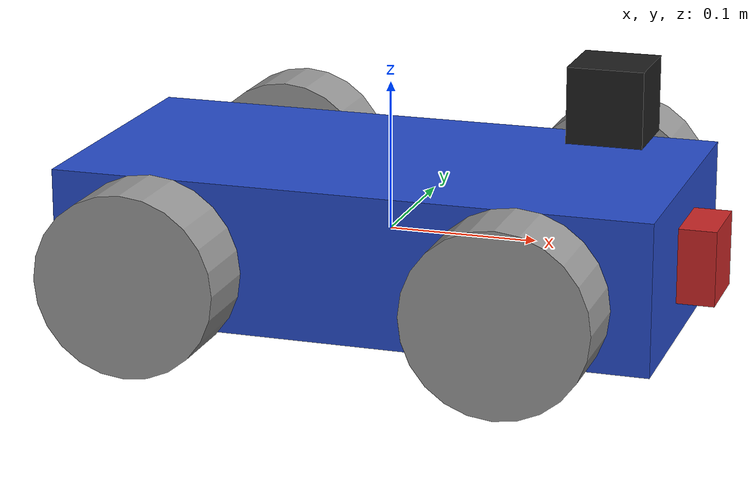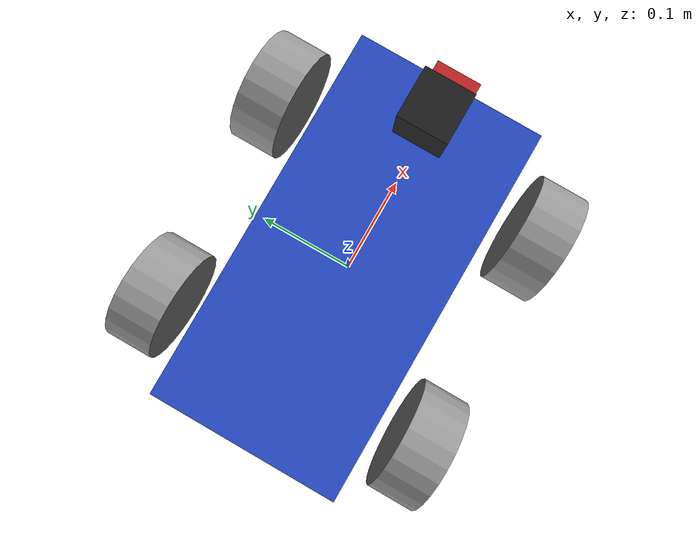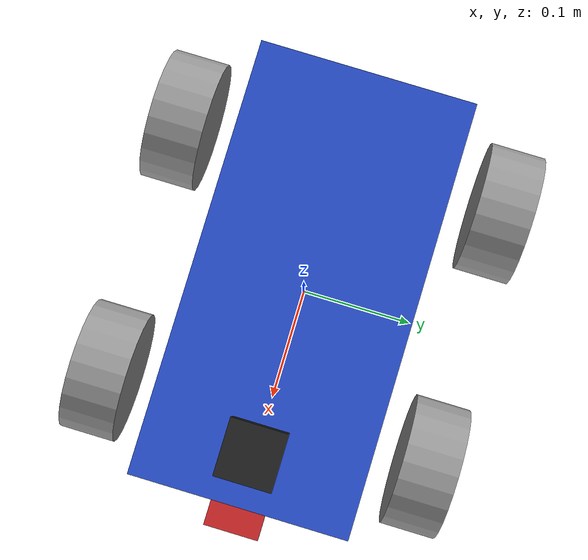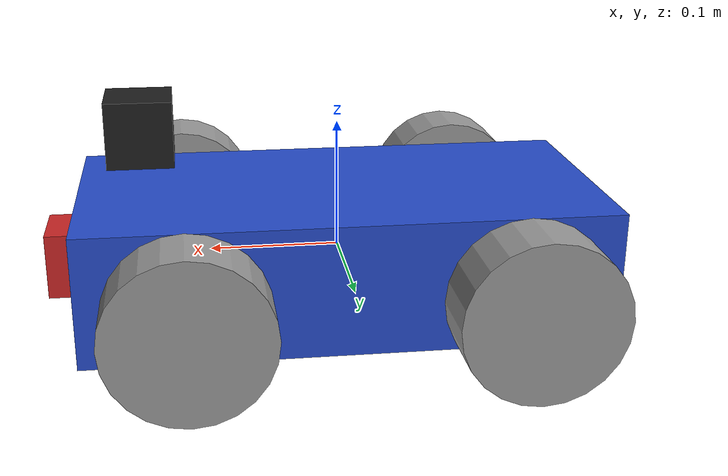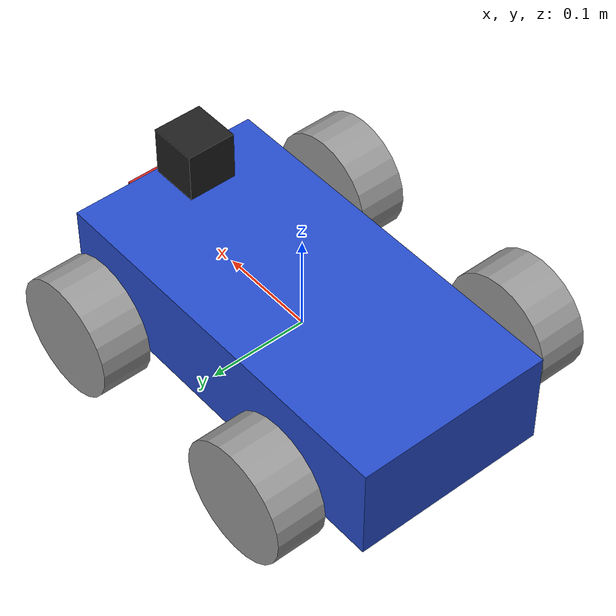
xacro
<?xml version='1.0'?>

<robot name="robot"
  xmlns:xacro="http://www.ros.org/wiki/xacro">

  <xacro:include filename="robot.gazebo" />

  <!-- base_footprint -->

  <link name="robot_footprint"></link>

  <joint name="robot_footprint_joint" type="fixed">
    <origin xyz="0 0 0" rpy="0 0 0" />
    <parent link="robot_footprint"/>
    <child link="base_link" />
  </joint>

  <!-- base_link -->

  <link name='base_link'>
    <pose>0 0 0.1 0 0 0</pose>

    <inertial>
      <mass value="15.0"/>
      <origin xyz="0.0 0 0" rpy=" 0 0 0"/>
      <inertia ixx="0.1" ixy="0" ixz="0" iyy="0.1" iyz="0" izz="0.1" />
    </inertial>

    <collision name='collision'>
      <origin xyz="0 0 0" rpy=" 0 0 0"/>
      <geometry>
        <box size=".4 .2 .1"/>
      </geometry>
    </collision>

    <visual name='base_link_visual'>
      <origin xyz="0 0 0" rpy=" 0 0 0"/>
      <geometry>
        <box size=".4 .2 .1"/>
      </geometry>
    </visual>
  </link>

  <gazebo reference="base_link">
    <material>Gazebo/Blue</material>
  </gazebo>

  <!-- front_left_wheel -->

  <link name="front_left_wheel">
    <inertial>
      <mass value="5.0"/>
      <origin xyz="0.0 0 0" rpy=" 0 1.5707 1.5707"/>
      <inertia ixx="0.1" ixy="0" ixz="0" iyy="0.1" iyz="0" izz="0.1" />
    </inertial>

    <visual>
      <origin xyz="0.0 0 0" rpy=" 0 1.5707 1.5707"/>
      <geometry>
        <cylinder length="0.05" radius="0.06"/>
      </geometry>
    </visual>

    <collision>
      <origin xyz="0.0 0 0" rpy=" 0 1.5707 1.5707"/>
      <geometry>
        <cylinder length="0.05" radius="0.06"/>
      </geometry>
    </collision>
  </link>

  <joint type="continuous" name="front_left_wheel_joint">
    <origin xyz="0.12 0.15 0" rpy="0 0 0"/>
    <child link="front_left_wheel"/>
    <parent link="base_link"/>
    <axis xyz="0 1 0" rpy="0 0 0"/>
    <limit effort="10000" velocity="1000"/>
    <dynamics damping="1.0" friction="1.0"/>
  </joint>

  <gazebo reference="front_left_wheel">
    <material>Gazebo/Gray</material>
  </gazebo>

  <!-- back_left_wheel -->

  <link name="back_left_wheel">
    <inertial>
      <mass value="5.0"/>
      <origin xyz="0.0 0 0" rpy=" 0 1.5707 1.5707"/>
      <inertia ixx="0.1" ixy="0" ixz="0" iyy="0.1" iyz="0" izz="0.1" />
    </inertial>

    <visual>
      <origin xyz="0.0 0 0" rpy=" 0 1.5707 1.5707"/>
      <geometry>
        <cylinder length="0.05" radius="0.06"/>
      </geometry>
    </visual>

    <collision>
      <origin xyz="0.0 0 0" rpy=" 0 1.5707 1.5707"/>
      <geometry>
        <cylinder length="0.05" radius="0.06"/>
      </geometry>
    </collision>
  </link>

  <joint type="continuous" name="back_left_wheel_joint">
    <origin xyz="-0.12 0.15 0" rpy="0 0 0"/>
    <child link="back_left_wheel"/>
    <parent link="base_link"/>
    <axis xyz="0 1 0" rpy="0 0 0"/>
    <limit effort="10000" velocity="1000"/>
    <dynamics damping="1.0" friction="1.0"/>
  </joint>

  <gazebo reference="back_left_wheel">
    <material>Gazebo/Gray</material>
  </gazebo>

  <!-- front_right_wheel -->

  <link name="front_right_wheel">
    <inertial>
      <mass value="5.0"/>
      <origin xyz="0.0 0 0" rpy=" 0 1.5707 1.5707"/>
      <inertia ixx="0.1" ixy="0" ixz="0" iyy="0.1" iyz="0" izz="0.1" />
    </inertial>

    <visual>
      <origin xyz="0.0 0 0" rpy=" 0 1.5707 1.5707"/>
      <geometry>
        <cylinder length="0.05" radius="0.06"/>
      </geometry>
    </visual>

    <collision>
      <origin xyz="0.0 0 0" rpy=" 0 1.5707 1.5707"/>
      <geometry>
        <cylinder length="0.05" radius="0.06"/>
      </geometry>
    </collision>
  </link>

  <joint type="continuous" name="front_right_wheel_joint">
    <origin xyz="0.12 -0.15 0" rpy="0 0 0"/>
    <child link="front_right_wheel"/>
    <parent link="base_link"/>
    <axis xyz="0 1 0" rpy="0 0 0"/>
    <limit effort="10000" velocity="1000"/>
    <dynamics damping="1.0" friction="1.0"/>
  </joint>

  <gazebo reference="front_right_wheel">
    <material>Gazebo/Gray</material>
  </gazebo>

  <!-- back_right_wheel -->

  <link name="back_right_wheel">
    <inertial>
      <mass value="5.0"/>
      <origin xyz="0.0 0 0" rpy=" 0 1.5707 1.5707"/>
      <inertia ixx="0.1" ixy="0" ixz="0" iyy="0.1" iyz="0" izz="0.1" />
    </inertial>

    <visual>
      <origin xyz="0.0 0 0" rpy=" 0 1.5707 1.5707"/>
      <geometry>
        <cylinder length="0.05" radius="0.06"/>
      </geometry>
    </visual>

    <collision>
      <origin xyz="0.0 0 0" rpy=" 0 1.5707 1.5707"/>
      <geometry>
        <cylinder length="0.05" radius="0.06"/>
      </geometry>
    </collision>
  </link>

  <joint type="continuous" name="back_right_wheel_joint">
    <origin xyz="-0.12 -0.15 0" rpy="0 0 0"/>
    <child link="back_right_wheel"/>
    <parent link="base_link"/>
    <axis xyz="0 1 0" rpy="0 0 0"/>
    <limit effort="10000" velocity="1000"/>
    <dynamics damping="1.0" friction="1.0"/>
  </joint>

  <gazebo reference="back_right_wheel">
    <material>Gazebo/Gray</material>
  </gazebo>

  <!-- camera -->

  <link name="camera">
    <inertial>
      <mass value="0.1"/>
      <origin xyz="0.05 0.05 0.05" rpy=" 0 0 0"/>
      <inertia ixx="1e-6" ixy="0" ixz="0" iyy="1e-6" iyz="0" izz="1e-6" />
    </inertial>

    <visual name="camera_visual">
      <origin xyz="0 0 0" rpy="0 0 0" />
      <geometry>
        <box size="0.05 0.05 0.05"/>
      </geometry>
    </visual>

    <collision name="camera_colision">
      <origin xyz="0 0 0" rpy="0 0 0" />
      <geometry>
        <box size="0.05 0.05 0.05"/>
      </geometry>
    </collision>
  </link>

  <joint type="fixed" name="camera_joint">
    <origin xyz="0.2 0 0" rpy="0 0 0"/>
    <child link="camera"/>
    <parent link="base_link"/>
    <axis xyz="0 1 0" rpy="0 0 0"/>
  </joint>

  <gazebo reference="camera">
    <material>Gazebo/Red</material>
  </gazebo>

  <!-- lidar -->

  <link name="lidar">
    <inertial>
      <mass value="1e-5"/>
      <origin xyz="0 0 0" rpy=" 0 0 0"/>
      <inertia ixx="1e-6" ixy="0" ixz="0" iyy="1e-6" iyz="0" izz="1e-6" />
    </inertial>

    <visual name="lidar_visual">
      <origin xyz="0 0 0" rpy="0 0 0" />
      <geometry>
        <box size="0.05 0.05 0.05"/>
      </geometry>
    </visual>

    <collision name="lidar_colision">
      <origin xyz="0 0 0" rpy="0 0 0" />
      <geometry>
        <box size="0.1 0.1 0.1"/>
      </geometry>
    </collision>
  </link>

  <joint type="fixed" name="lidar_joint">
    <origin xyz="0.15 0 0.1" rpy="0 0 0"/>
    <child link="lidar"/>
    <parent link="base_link"/>
    <axis xyz="0 1 0" rpy="0 0 0"/>
  </joint>

  <gazebo reference="lidar">
    <material>Gazebo/Black</material>
  </gazebo>

</robot>
